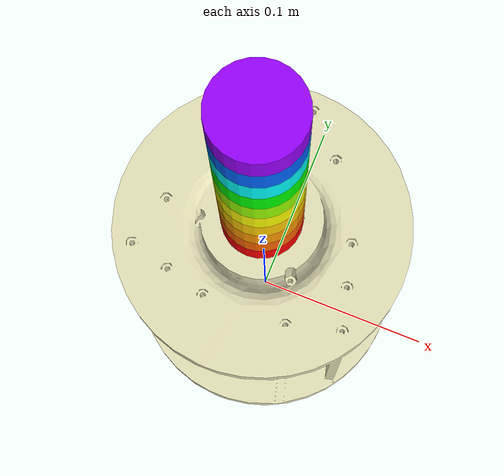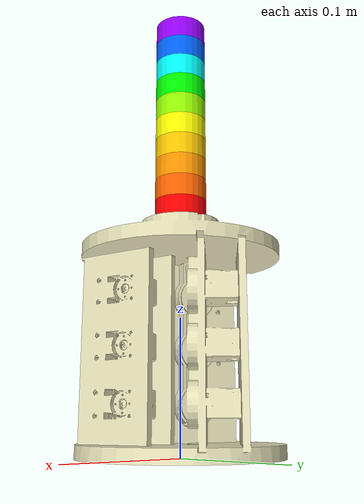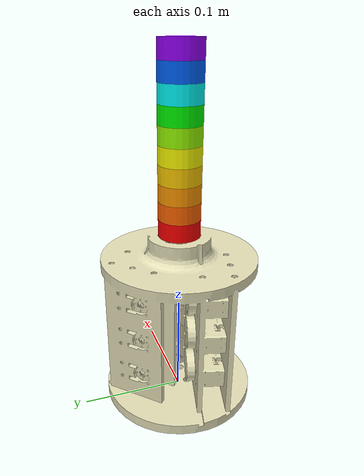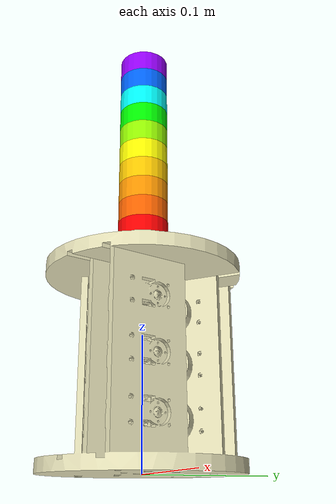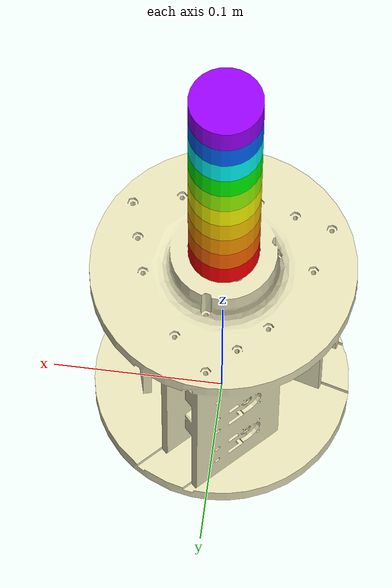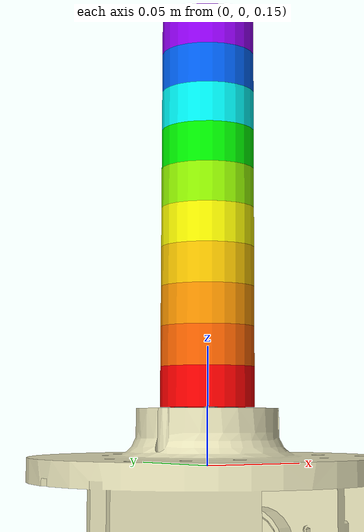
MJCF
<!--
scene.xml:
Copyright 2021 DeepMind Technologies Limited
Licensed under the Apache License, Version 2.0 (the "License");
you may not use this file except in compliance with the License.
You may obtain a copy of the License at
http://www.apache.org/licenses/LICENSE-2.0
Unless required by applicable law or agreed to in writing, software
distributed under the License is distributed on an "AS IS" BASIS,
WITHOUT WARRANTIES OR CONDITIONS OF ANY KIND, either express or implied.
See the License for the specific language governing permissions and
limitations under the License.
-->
<?xml version="1.0"?>
<mujoco model="TDCR">

  <visual>
    <global offwidth="1280" offheight="720"/>
  </visual>

  <include file="scene.xml"/>

  <option timestep="0.002" gravity="0 0 -9.81"/>

  <asset>
    <mesh name="base_mesh" file="base.stl"/>
  </asset>

  <default>
    <geom density="25" friction="0.8 0.1 0.1" rgba="0.6 0.6 0.9 1"/>
    <joint damping="0.1" armature="0.01" limited="false"/>
    <site  size="0.002" rgba="1 0.4 0.4 1"/>
  </default>

  <worldbody>
    <camera name="camera1" pos="0.000 -0.500 0.270" quat="0.77334 0.63399 -0.00000 -0.00000" fovy="45"/>
    <camera name="camera2" pos="0.000 0.500 0.270" quat="-0.00000 0.00000 0.63399 0.77334" fovy="45"/>
    <camera name="camera3" pos="0.500 0.000 0.270" quat="0.54684 0.44830 0.44830 0.54684" fovy="45"/>
    <camera name="camera4" pos="-0.500 0.000 0.270" quat="-0.54684 -0.44830 0.44830 0.54684" fovy="45"/>
    <camera name="camera5" pos="0.354 0.354 0.270" quat="0.29595 0.24262 0.58573 0.71447" fovy="45"/>
    <camera name="camera6" pos="-0.354 0.354 0.270" quat="0.29595 0.24262 -0.58573 -0.71447" fovy="45"/>
    <camera name="camera7" pos="-0.354 -0.354 0.270" quat="0.71447 0.58573 -0.24262 -0.29595" fovy="45"/>
    <camera name="camera8" pos="0.354 -0.354 0.270" quat="0.71447 0.58573 0.24262 0.29595" fovy="45"/>

    <body name="base" pos="0 0 0.174">
      <!-- Light yellow base; 174 mm above ground. Put the offset in the body pos, not the geom. -->
      <geom type="mesh" mesh="base_mesh" rgba="0.902 0.886 0.725 1.0" contype="0" conaffinity="0" group="1"/>
      <site name="b00" pos=" 0.0125  0         -0.0085"/>
      <site name="b01" pos="-0.00625  0.010825 -0.0085"/>
      <site name="b02" pos="-0.00625 -0.010825 -0.0085"/>

      <!-- ===== DISC0 (fixed) ===== -->
      <!-- Ball joint here is optional; disc0 is effectively immobile. Under tendon actuation, only the upper section is actuated. -->
      <!-- In the geom, size controls half-height (half thickness). Adjust the joint position via the body's pos. -->
      <body name="disc0" pos="0 0 0.00895">
        <joint name="ball0" type="ball"/>
        <geom type="cylinder" size="0.02 0.0085" contype="0" conaffinity="0" rgba="1.0 0.0 0.0 1.0" group="1"/>
        <site name="s00" pos=" 0.0125  0         0"/>
        <site name="s01" pos="-0.00625  0.010825 0"/>
        <site name="s02" pos="-0.00625 -0.010825 0"/>

        <!-- ===== DISC1 ===== -->
        <body name="disc1" pos="0 0 0.017">
          <joint name="ball1" type="ball"/>
          <geom type="cylinder" size="0.02 0.0085" contype="0" conaffinity="0" rgba="1.0 0.4 0.0 1.0" group="1"/>
          <site name="s10" pos=" 0.0125  0         0"/>
          <site name="s11" pos="-0.00625  0.010825 0"/>
          <site name="s12" pos="-0.00625 -0.010825 0"/>

          <!-- ===== DISC2 ===== -->
          <body name="disc2" pos="0 0 0.017">
            <joint name="ball2" type="ball"/>
            <geom type="cylinder" size="0.02 0.0085" contype="0" conaffinity="0" rgba="1.0 0.6 0.0 1.0" group="1"/>
            <site name="s20" pos=" 0.0125  0         0"/>
            <site name="s21" pos="-0.00625  0.010825 0"/>
            <site name="s22" pos="-0.00625 -0.010825 0"/>

            <!-- ===== DISC3 ===== -->
            <body name="disc3" pos="0 0 0.017">
              <joint name="ball3" type="ball"/>
              <geom type="cylinder" size="0.02 0.0085" contype="0" conaffinity="0" rgba="1.0 0.8 0.0 1.0" group="1"/>
              <site name="s30" pos=" 0.0125  0         0"/>
              <site name="s31" pos="-0.00625  0.010825 0"/>
              <site name="s32" pos="-0.00625 -0.010825 0"/>

              <!-- ===== DISC4 ===== -->
              <body name="disc4" pos="0 0 0.017">
                <joint name="ball4" type="ball"/>
                <geom type="cylinder" size="0.02 0.0085" contype="0" conaffinity="0" rgba="1.0 1.0 0.0 1.0" group="1"/>
                <site name="s40" pos=" 0.0125  0         0"/>
                <site name="s41" pos="-0.00625  0.010825 0"/>
                <site name="s42" pos="-0.00625 -0.010825 0"/>

                <!-- ===== DISC5 (interface between lower & upper) ===== -->
                <body name="disc5" pos="0 0 0.017">
                  <joint name="ball5" type="ball"/>
                  <geom type="cylinder" size="0.02 0.0085" contype="0" conaffinity="0" rgba="0.6 1.0 0.0 1.0" group="1"/>
                  <site name="s50" pos=" 0.0125  0         0"/>
                  <site name="s51" pos="-0.00625  0.010825 0"/>
                  <site name="s52" pos="-0.00625 -0.010825 0"/>

                  <!-- ===== DISC6 ===== -->
                  <body name="disc6" pos="0 0 0.017">
                    <joint name="ball6" type="ball"/>
                    <geom type="cylinder" size="0.02 0.0085" contype="0" conaffinity="0" rgba="0.0 1.0 0.0 1.0" group="1"/>
                    <site name="s60" pos=" 0.0125  0         0"/>
                    <site name="s61" pos="-0.00625  0.010825 0"/>
                    <site name="s62" pos="-0.00625 -0.010825 0"/>

                    <!-- ===== DISC7 ===== -->
                    <body name="disc7" pos="0 0 0.017">
                      <joint name="ball7" type="ball"/>
                      <geom type="cylinder" size="0.02 0.0085" contype="0" conaffinity="0" rgba="0.0 1.0 1.0 1.0" group="1"/>
                      <site name="s70" pos=" 0.0125  0         0"/>
                      <site name="s71" pos="-0.00625  0.010825 0"/>
                      <site name="s72" pos="-0.00625 -0.010825 0"/>

                      <!-- ===== DISC8 ===== -->
                      <body name="disc8" pos="0 0 0.017">
                        <joint name="ball8" type="ball"/>
                        <geom type="cylinder" size="0.02 0.0085" contype="0" conaffinity="0" rgba="0.0 0.4 1.0 1.0" group="1"/>
                        <site name="s80" pos=" 0.0125  0         0"/>
                        <site name="s81" pos="-0.00625  0.010825 0"/>
                        <site name="s82" pos="-0.00625 -0.010825 0"/>

                          <!-- ===== DISC9 (TIP) ===== -->
                        <body name="disc9" pos="0 0 0.017">
                          <joint name="ball9" type="ball"/>
                          <geom type="cylinder" size="0.02 0.0085" contype="0" conaffinity="0" rgba="0.6 0.0 1.0 1.0" group="1"/>
                          <site name="s90" pos=" 0.0125  0         0"/>
                          <site name="s91" pos="-0.00625  0.010825 0"/>
                          <site name="s92" pos="-0.00625 -0.010825 0"/>

                        </body><!-- disc8 end -->
                      </body><!-- disc8 end -->
                    </body><!-- disc7 end -->
                  </body><!-- disc6 end -->
                </body><!-- disc5 end -->
              </body><!-- disc4 end -->
            </body><!-- disc3 end -->
          </body><!-- disc2 end -->
        </body><!-- disc1 end -->
      </body><!-- disc0 end -->
    </body><!-- base end -->
  </worldbody>

  <tendon>
    <spatial name="tendon1">
      <site site="b00"/><site site="s00"/><site site="s10"/><site site="s20"/><site site="s30"/><site site="s40"/>
    </spatial>
    <spatial name="tendon2">
      <site site="b01"/><site site="s01"/><site site="s11"/><site site="s21"/><site site="s31"/><site site="s41"/>
    </spatial>
    <spatial name="tendon3">
      <site site="b02"/><site site="s02"/><site site="s12"/><site site="s22"/><site site="s32"/><site site="s42"/>
    </spatial>

    <spatial name="tendon4">
      <site site="s40"/><site site="s50"/><site site="s60"/><site site="s70"/><site site="s80"/><site site="s90"/>
    </spatial>
    <spatial name="tendon5">
      <site site="s41"/><site site="s51"/><site site="s61"/><site site="s71"/><site site="s81"/><site site="s91"/>
    </spatial>
    <spatial name="tendon6">
      <site site="s42"/><site site="s52"/><site site="s62"/><site site="s72"/><site site="s82"/><site site="s92"/>
    </spatial>
  </tendon>

  <actuator>
    <!-- lower motors control discs 0-4 -->
    <position name="motor1" tendon="tendon1" kp="500" ctrlrange="0 0.04"/>
    <position name="motor2" tendon="tendon2" kp="500" ctrlrange="0 0.04"/>
    <position name="motor3" tendon="tendon3" kp="500" ctrlrange="0 0.04"/>

    <!-- upper motors control discs 5-9 -->
    <position name="motor4" tendon="tendon4" kp="500" ctrlrange="0 0.04"/>
    <position name="motor5" tendon="tendon5" kp="500" ctrlrange="0 0.04"/>
    <position name="motor6" tendon="tendon6" kp="500" ctrlrange="0 0.04"/>
  </actuator>

</mujoco>

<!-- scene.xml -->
<mujoco>
  <compiler meshdir="asset" texturedir="asset"/>

  <statistic meansize=".05"/>

  <visual>
    <rgba haze="0.15 0.25 0.35 1"/>
    <quality shadowsize="4096"/>
    <map stiffness="700" shadowscale="0.5" fogstart="1" fogend="15" zfar="40" haze="1"/>
  </visual>

  <asset>
    <texture type="skybox" builtin="gradient" rgb1="0.3 0.5 0.7" rgb2="0 0 0" width="512" height="512"/>
    <texture name="texplane" type="2d" builtin="checker" rgb1=".2 .3 .4" rgb2=".1 0.15 0.2"
      width="512" height="512" mark="cross" markrgb=".8 .8 .8"/>

    <material name="matplane" reflectance="0.3" texture="texplane" texrepeat="10 10" texuniform="true"/>
  </asset>

  <worldbody>
    <light diffuse=".4 .4 .4" specular="0.1 0.1 0.1" pos="0 0 2.0" dir="0 0 -1" castshadow="false"/>
    <light directional="true" diffuse=".8 .8 .8" specular="0.2 0.2 0.2" pos="0 0 4" dir="0 0 -1"/>

  </worldbody>
</mujoco>
